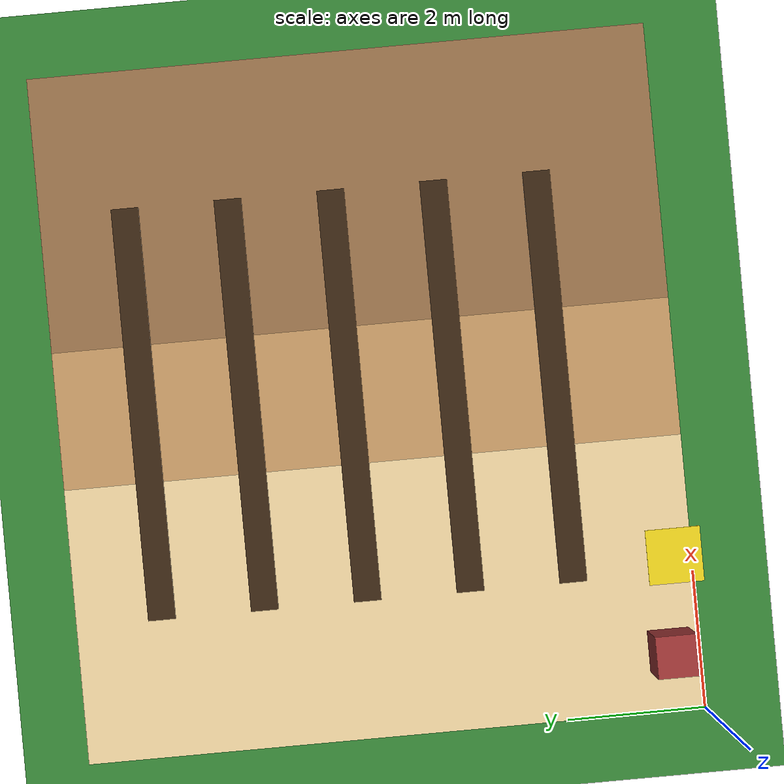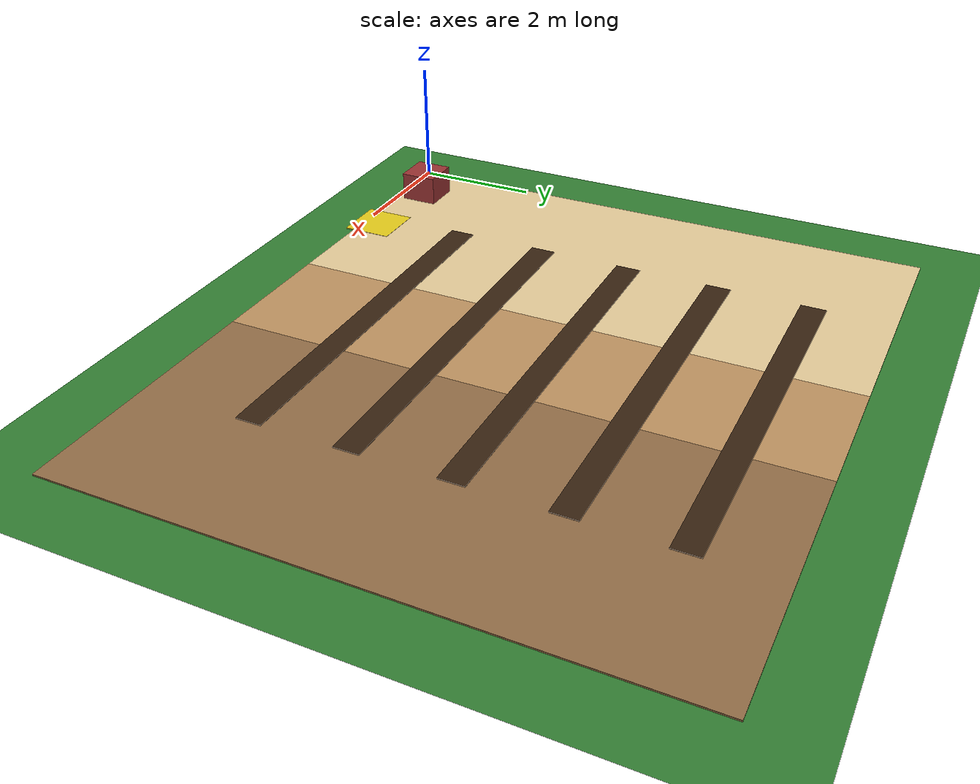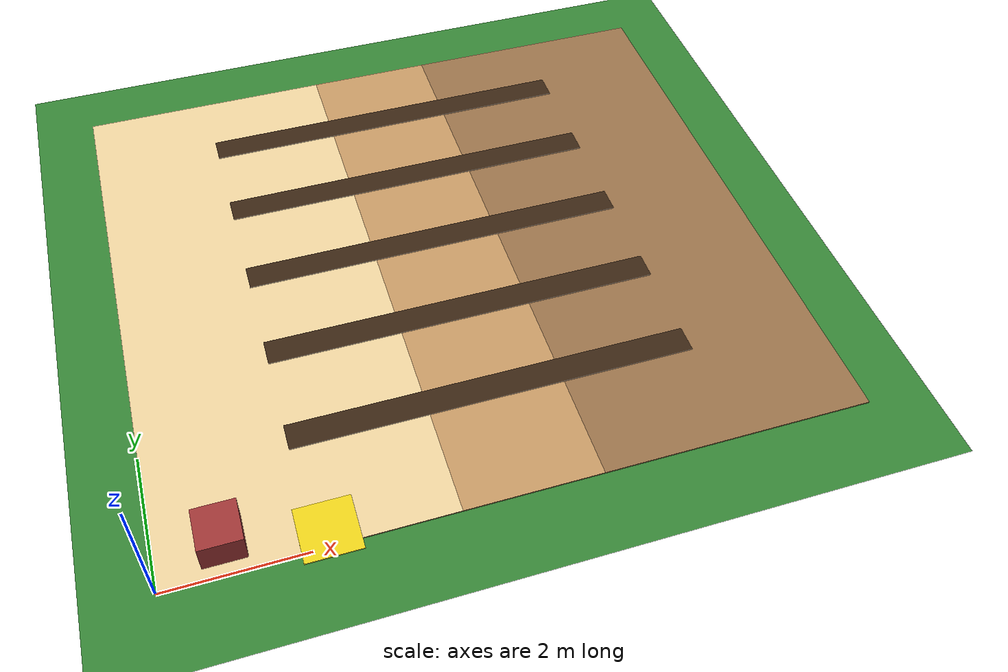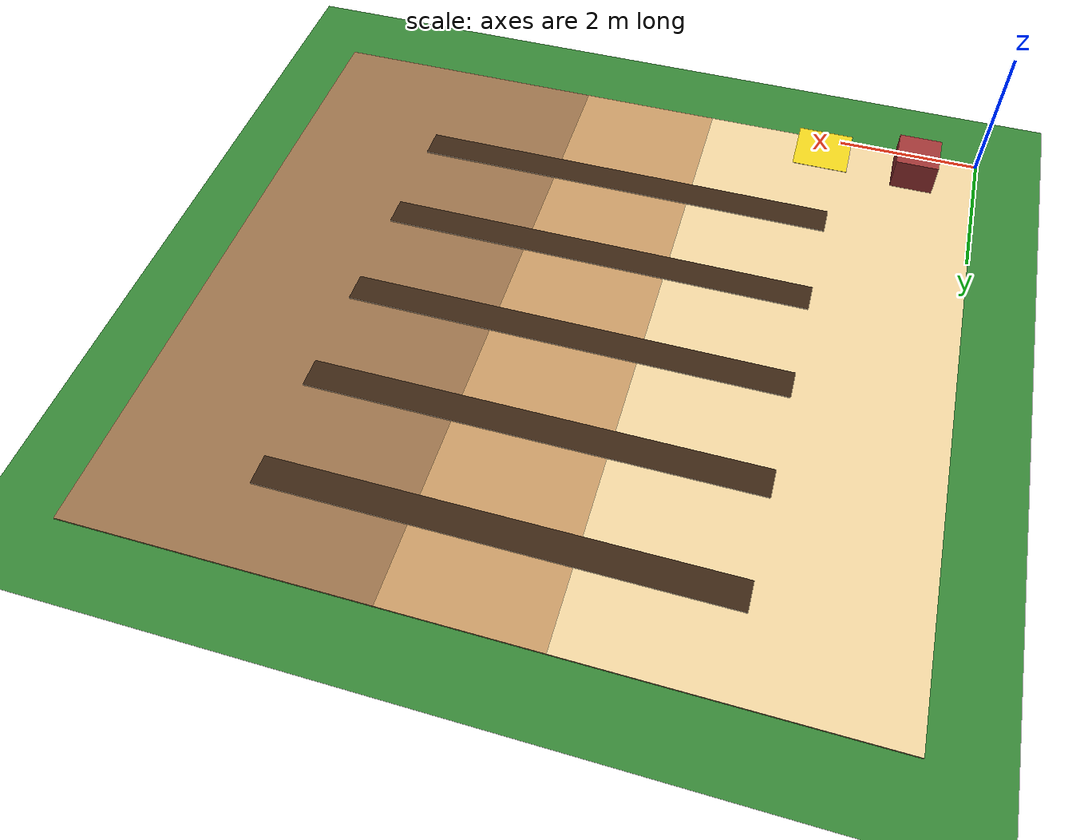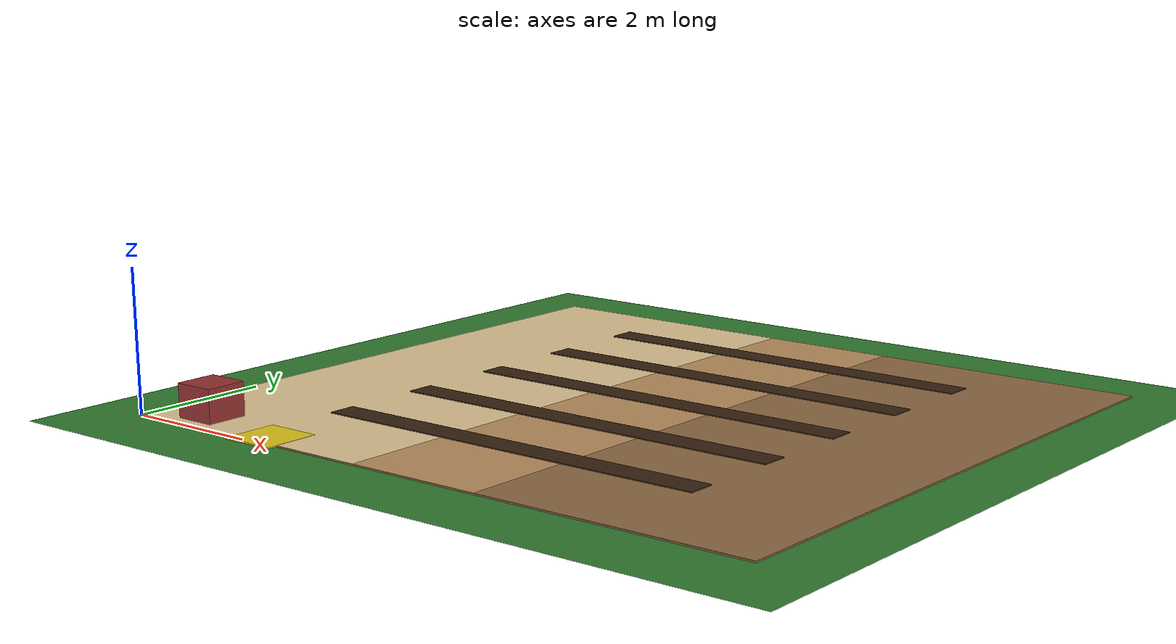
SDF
<?xml version="1.0" ?>
<sdf version="1.6">
  <world name="seed_field">

    <include><uri>model://sun</uri></include>

    <gui>
      <camera name="user_camera">
        <pose>5 4.5 15 0 1.5707 1.5707</pose>
      </camera>
    </gui>

    <!-- Grass around the field -->
    <model name="grass">
      <static>true</static>
      <link name="link">
        <pose>5 4.5 0 0 0 0</pose>
        <collision name="collision">
          <geometry><plane><normal>0 0 1</normal><size>40 40</size></plane></geometry>
          <surface><friction><ode><mu>100</mu><mu2>50</mu2></ode></friction></surface>
        </collision>
        <visual name="visual">
          <cast_shadows>false</cast_shadows>
          <geometry><plane><normal>0 0 1</normal><size>40 40</size></plane></geometry>
          <material>
            <ambient>0.2 0.5 0.2 1</ambient>
            <diffuse>0.2 0.5 0.2 1</diffuse>
          </material>
        </visual>
      </link>
    </model>

    <!-- The field: soil, 3 soil zones, 5 crop rows, godown pad and shed (visual only) -->
    <model name="seed_field">
      <static>true</static>
      <link name="link">

        <visual name="soil_base">
          <pose>5 4.5 0.01 0 0 0</pose>
          <geometry><box><size>10 9 0.02</size></box></geometry>
          <material>
            <ambient>0.55 0.40 0.25 1</ambient>
            <diffuse>0.55 0.40 0.25 1</diffuse>
          </material>
        </visual>

        <!-- soil zones: dry (Seed A), moist (Seed B), wet (Seed C) -->
        <visual name="zone_dry">
          <pose>2 4.5 0.0225 0 0 0</pose>
          <geometry><box><size>4 9 0.005</size></box></geometry>
          <material><ambient>0.90 0.80 0.60 1</ambient><diffuse>0.90 0.80 0.60 1</diffuse></material>
        </visual>
        <visual name="zone_moist">
          <pose>5 4.5 0.0225 0 0 0</pose>
          <geometry><box><size>2 9 0.005</size></box></geometry>
          <material><ambient>0.75 0.58 0.38 1</ambient><diffuse>0.75 0.58 0.38 1</diffuse></material>
        </visual>
        <visual name="zone_wet">
          <pose>8 4.5 0.0225 0 0 0</pose>
          <geometry><box><size>4 9 0.005</size></box></geometry>
          <material><ambient>0.58 0.43 0.28 1</ambient><diffuse>0.58 0.43 0.28 1</diffuse></material>
        </visual>

        <!-- 5 crop rows -->
        <visual name="row_1">
          <pose>5 7.75 0.02 0 0 0</pose>
          <geometry><box><size>6 0.4 0.04</size></box></geometry>
          <material><ambient>0.22 0.14 0.07 1</ambient><diffuse>0.22 0.14 0.07 1</diffuse></material>
        </visual>
        <visual name="row_2">
          <pose>5 6.25 0.02 0 0 0</pose>
          <geometry><box><size>6 0.4 0.04</size></box></geometry>
          <material><ambient>0.22 0.14 0.07 1</ambient><diffuse>0.22 0.14 0.07 1</diffuse></material>
        </visual>
        <visual name="row_3">
          <pose>5 4.75 0.02 0 0 0</pose>
          <geometry><box><size>6 0.4 0.04</size></box></geometry>
          <material><ambient>0.22 0.14 0.07 1</ambient><diffuse>0.22 0.14 0.07 1</diffuse></material>
        </visual>
        <visual name="row_4">
          <pose>5 3.25 0.02 0 0 0</pose>
          <geometry><box><size>6 0.4 0.04</size></box></geometry>
          <material><ambient>0.22 0.14 0.07 1</ambient><diffuse>0.22 0.14 0.07 1</diffuse></material>
        </visual>
        <visual name="row_5">
          <pose>5 1.75 0.02 0 0 0</pose>
          <geometry><box><size>6 0.4 0.04</size></box></geometry>
          <material><ambient>0.22 0.14 0.07 1</ambient><diffuse>0.22 0.14 0.07 1</diffuse></material>
        </visual>

        <!-- godown -->
        <visual name="godown_pad">
          <pose>2.25 0.25 0.02 0 0 0</pose>
          <geometry><box><size>0.8 0.8 0.02</size></box></geometry>
          <material><ambient>0.9 0.8 0.1 1</ambient><diffuse>0.9 0.8 0.1 1</diffuse></material>
        </visual>
        <visual name="godown_shed">
          <pose>0.9 0.45 0.25 0 0 0</pose>
          <geometry><box><size>0.6 0.6 0.5</size></box></geometry>
          <material><ambient>0.6 0.2 0.2 1</ambient><diffuse>0.6 0.2 0.2 1</diffuse></material>
        </visual>

      </link>
    </model>

  </world>
</sdf>
